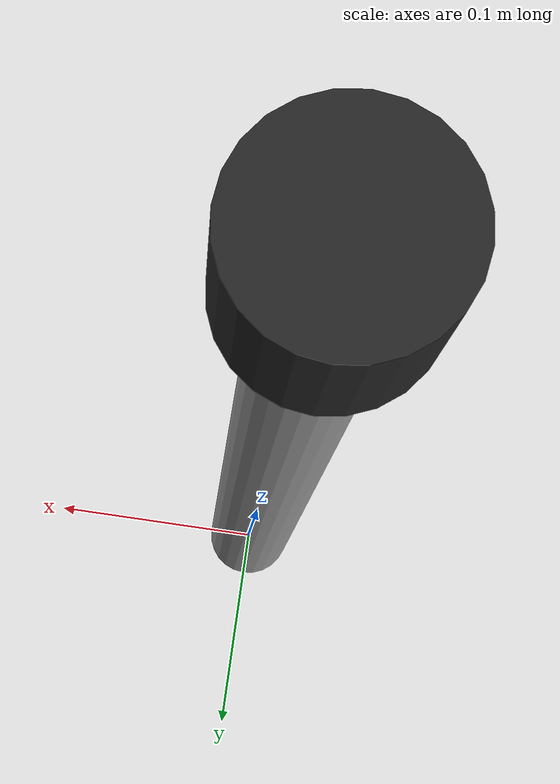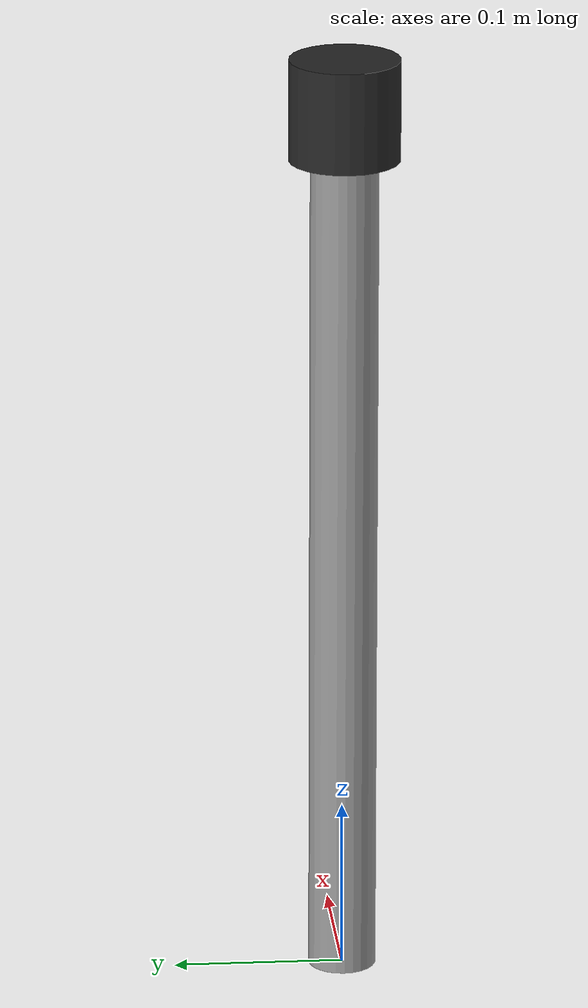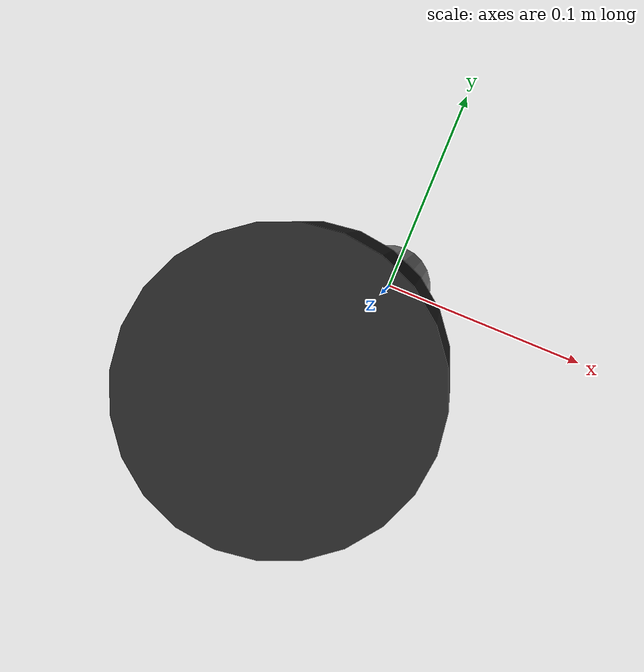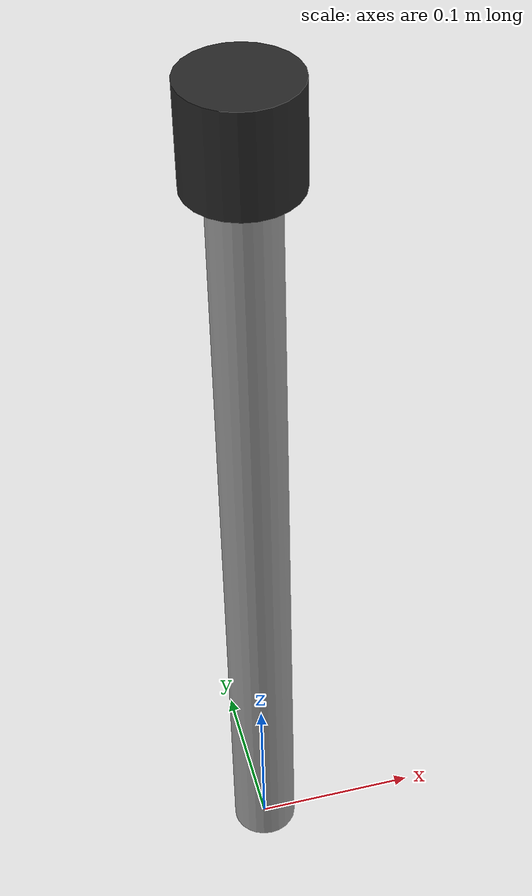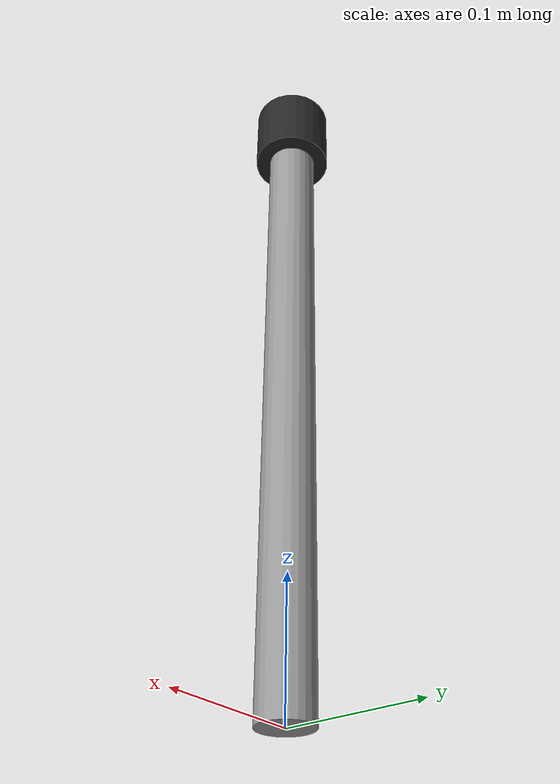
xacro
<?xml version="1.0"?>
<robot name="livox_stand" xmlns:xacro="http://www.ros.org/wiki/xacro">
  <xacro:arg name="sensor" default="raycast"/>
  <xacro:arg name="geometry_source" default="collision"/>
  <xacro:arg name="pattern_file" default="model://livox_mid360/scan_mode/mid360.csv"/>
  <xacro:arg name="dense_rate" default="50"/>
  <xacro:arg name="range_noise" default="0.02"/>
  <xacro:arg name="angular_noise" default="0.15"/>
  <xacro:arg name="imu_bias" default="true"/>
  <xacro:arg name="dense_h" default="1440"/>
  <xacro:arg name="dense_v" default="160"/>

  <xacro:include filename="$(find livox_mid360_gazebo)/urdf/livox_mid360.urdf.xacro"/>

  <xacro:property name="pole_len" value="0.5"/>

  <link name="world"/>
  <joint name="pole_to_world" type="fixed">
    <parent link="world"/>
    <child link="pole"/>
  </joint>

  <link name="pole">
    <inertial>
      <origin xyz="0 0 ${pole_len / 2}"/>
      <mass value="1.0"/>
      <inertia ixx="0.02" iyy="0.02" izz="0.0002" ixy="0" ixz="0" iyz="0"/>
    </inertial>
    <visual>
      <origin xyz="0 0 ${pole_len / 2}"/>
      <geometry><cylinder radius="0.02" length="${pole_len}"/></geometry>
      <material name="stand_grey"><color rgba="0.6 0.6 0.6 1"/></material>
    </visual>
    <collision>
      <origin xyz="0 0 ${pole_len / 2}"/>
      <geometry><cylinder radius="0.02" length="${pole_len}"/></geometry>
    </collision>
  </link>

  <xacro:livox_mid360 parent="pole" xyz="0 0 ${pole_len}" rpy="0 0 0" sensor="$(arg sensor)"
                      geometry_source="$(arg geometry_source)"
                      pattern_file="$(arg pattern_file)" dense_rate="$(arg dense_rate)"
                      range_noise="$(arg range_noise)" angular_noise="$(arg angular_noise)"
                      imu_bias="$(arg imu_bias)"
                      dense_h_samples="$(arg dense_h)" dense_v_samples="$(arg dense_v)"/>
</robot>

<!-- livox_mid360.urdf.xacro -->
<robot xmlns:xacro="http://www.ros.org/wiki/xacro">
  <xacro:macro name="livox_mid360"
    params="parent xyz:='0 0 0' rpy:='0 0 0'
            sensor:=raycast frame_id:=livox_frame
            points_topic:=/livox/points imu_topic:=/livox/imu_raw dense_topic:=/livox/dense_scan
            point_rate:=200000 frame_rate:=10 imu_rate:=200 dense_rate:=50
            geometry_source:=collision
            dense_h_samples:=1440 dense_v_samples:=160
            pattern_file:=model://livox_mid360/scan_mode/mid360.csv
            range_noise:=0.02 angular_noise:=0.15 default_reflectivity:=100
            min_range:=0.1 max_range:=70.0 nominal_range:=40.0
            gyro_noise:=6.6e-4 gyro_bias:=1.7e-3 gyro_bias_drift:=2.4e-5
            accel_noise:=0.01 accel_bias:=0.05 accel_bias_drift:=1.0e-3 imu_bias_tau:=300
            imu_bias:=true">

    <link name="${frame_id}_base">
      <inertial>
        <origin xyz="0 0 0.03"/>
        <mass value="0.265"/>
        <inertia ixx="1.73e-4" iyy="1.73e-4" izz="1.40e-4" ixy="0" ixz="0" iyz="0"/>
      </inertial>
      <visual>
        <origin xyz="0 0 0.03"/>
        <geometry><cylinder radius="0.0325" length="0.06"/></geometry>
        <material name="livox_black"><color rgba="0.15 0.15 0.15 1"/></material>
      </visual>
      <collision>
        <origin xyz="0 0 0.03"/>
        <geometry><cylinder radius="0.0325" length="0.06"/></geometry>
      </collision>
    </link>
    <joint name="${frame_id}_mount_joint" type="fixed">
      <parent link="${parent}"/>
      <child link="${frame_id}_base"/>
      <origin xyz="${xyz}" rpy="${rpy}"/>
    </joint>

    <link name="${frame_id}">
      <inertial>
        <mass value="0.001"/>
        <inertia ixx="1e-7" iyy="1e-7" izz="1e-7" ixy="0" ixz="0" iyz="0"/>
      </inertial>
    </link>
    <joint name="${frame_id}_joint" type="fixed">
      <parent link="${frame_id}_base"/>
      <child link="${frame_id}"/>
      <origin xyz="0 0 0.047" rpy="0 0 0"/>
    </joint>
    <!-- keep the optical-centre link through URDF->SDF fixed-joint lumping -->
    <gazebo reference="${frame_id}_joint">
      <preserveFixedJoint>true</preserveFixedJoint>
    </gazebo>

    <gazebo reference="${frame_id}">
      <xacro:if value="${sensor == 'gpu'}">
        <sensor name="${frame_id}_dense" type="gpu_lidar">
          <pose>0 0 0 0 0 0</pose>
          <topic>${dense_topic}</topic>
          <update_rate>${dense_rate}</update_rate>
          <always_on>true</always_on>
          <visualize>false</visualize>
          <lidar>
            <scan>
              <horizontal>
                <samples>${dense_h_samples}</samples>
                <resolution>1</resolution>
                <min_angle>${-pi}</min_angle>
                <max_angle>${pi - 2*pi/dense_h_samples}</max_angle>
              </horizontal>
              <vertical>
                <samples>${dense_v_samples}</samples>
                <resolution>1</resolution>
                <min_angle>${radians(-7.5)}</min_angle>
                <max_angle>${radians(52.5)}</max_angle>
              </vertical>
            </scan>
            <range>
              <min>${min_range}</min>
              <max>${max_range}</max>
              <resolution>0.001</resolution>
            </range>
          </lidar>
        </sensor>
      </xacro:if>

      <sensor name="${frame_id}_imu" type="imu">
        <pose>0.011 0.02329 -0.04412 0 0 0</pose>
        <topic>${imu_topic}</topic>
        <update_rate>${imu_rate}</update_rate>
        <always_on>true</always_on>
        <imu>
          <angular_velocity>
            <x><noise type="gaussian"><mean>0</mean><stddev>${gyro_noise}</stddev><bias_mean>0</bias_mean><bias_stddev>${gyro_bias if str(imu_bias).lower() in ('true', '1') else 0}</bias_stddev><dynamic_bias_stddev>${gyro_bias_drift if str(imu_bias).lower() in ('true', '1') else 0}</dynamic_bias_stddev><dynamic_bias_correlation_time>${imu_bias_tau}</dynamic_bias_correlation_time></noise></x>
            <y><noise type="gaussian"><mean>0</mean><stddev>${gyro_noise}</stddev><bias_mean>0</bias_mean><bias_stddev>${gyro_bias if str(imu_bias).lower() in ('true', '1') else 0}</bias_stddev><dynamic_bias_stddev>${gyro_bias_drift if str(imu_bias).lower() in ('true', '1') else 0}</dynamic_bias_stddev><dynamic_bias_correlation_time>${imu_bias_tau}</dynamic_bias_correlation_time></noise></y>
            <z><noise type="gaussian"><mean>0</mean><stddev>${gyro_noise}</stddev><bias_mean>0</bias_mean><bias_stddev>${gyro_bias if str(imu_bias).lower() in ('true', '1') else 0}</bias_stddev><dynamic_bias_stddev>${gyro_bias_drift if str(imu_bias).lower() in ('true', '1') else 0}</dynamic_bias_stddev><dynamic_bias_correlation_time>${imu_bias_tau}</dynamic_bias_correlation_time></noise></z>
          </angular_velocity>
          <linear_acceleration>
            <x><noise type="gaussian"><mean>0</mean><stddev>${accel_noise}</stddev><bias_mean>0</bias_mean><bias_stddev>${accel_bias if str(imu_bias).lower() in ('true', '1') else 0}</bias_stddev><dynamic_bias_stddev>${accel_bias_drift if str(imu_bias).lower() in ('true', '1') else 0}</dynamic_bias_stddev><dynamic_bias_correlation_time>${imu_bias_tau}</dynamic_bias_correlation_time></noise></x>
            <y><noise type="gaussian"><mean>0</mean><stddev>${accel_noise}</stddev><bias_mean>0</bias_mean><bias_stddev>${accel_bias if str(imu_bias).lower() in ('true', '1') else 0}</bias_stddev><dynamic_bias_stddev>${accel_bias_drift if str(imu_bias).lower() in ('true', '1') else 0}</dynamic_bias_stddev><dynamic_bias_correlation_time>${imu_bias_tau}</dynamic_bias_correlation_time></noise></y>
            <z><noise type="gaussian"><mean>0</mean><stddev>${accel_noise}</stddev><bias_mean>0</bias_mean><bias_stddev>${accel_bias if str(imu_bias).lower() in ('true', '1') else 0}</bias_stddev><dynamic_bias_stddev>${accel_bias_drift if str(imu_bias).lower() in ('true', '1') else 0}</dynamic_bias_stddev><dynamic_bias_correlation_time>${imu_bias_tau}</dynamic_bias_correlation_time></noise></z>
          </linear_acceleration>
        </imu>
      </sensor>
    </gazebo>

    <gazebo>
      <plugin filename="livox_mid360_gazebo_system"
              name="livox_mid360_gazebo::${'LivoxMid360Gpu' if sensor == 'gpu' else 'LivoxMid360Raycast'}">
        <frame_id>${frame_id}</frame_id>
        <link_name>${frame_id}</link_name>
        <dense_topic>${dense_topic}</dense_topic>
        <geometry_source>${geometry_source}</geometry_source>
        <points_topic>${points_topic}</points_topic>
        <pattern_file>${pattern_file}</pattern_file>
        <point_rate>${point_rate}</point_rate>
        <frame_rate>${frame_rate}</frame_rate>
        <min_range>${min_range}</min_range>
        <max_range>${max_range}</max_range>
        <nominal_range>${nominal_range}</nominal_range>
        <range_noise_stddev>${range_noise}</range_noise_stddev>
        <near_range_noise_stddev>${1.5 * float(range_noise)}</near_range_noise_stddev>
        <angular_noise_stddev_deg>${angular_noise}</angular_noise_stddev_deg>
        <default_reflectivity>${default_reflectivity}</default_reflectivity>
      </plugin>
    </gazebo>
  </xacro:macro>
</robot>
